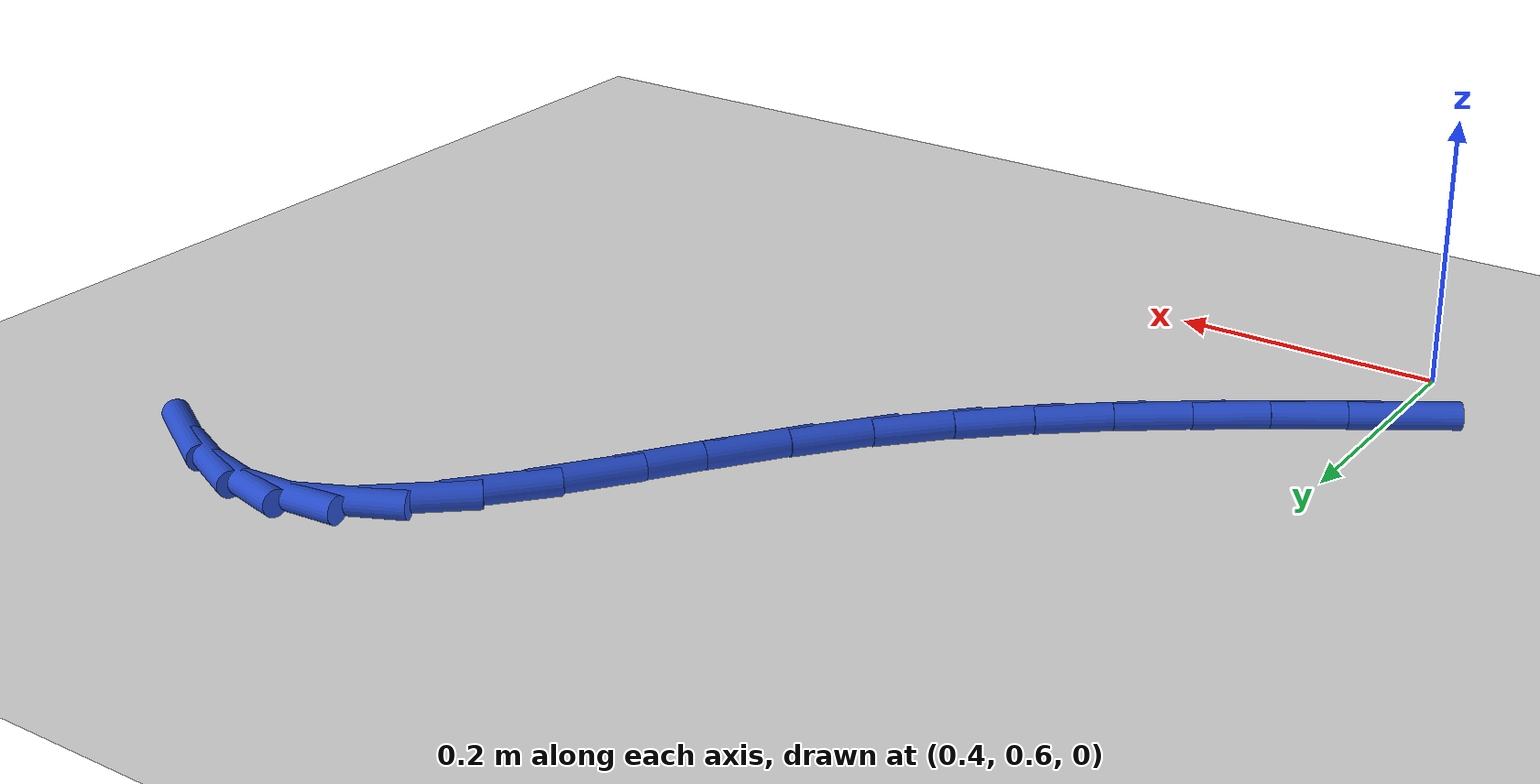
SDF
<sdf version="1.6">
 <world name="default">
  <model name="ground_plane">
   <static>1</static>
   <link name="link">
    <collision name="collision">
     <geometry><plane><normal>0 0 1</normal><size>100 100</size></plane></geometry>
     <surface><friction><ode><mu>100</mu><mu2>50</mu2></ode></friction></surface>
    </collision>
    <visual name="visual">
     <cast_shadows>0</cast_shadows>
     <geometry><plane><normal>0 0 1</normal><size>100 100</size></plane></geometry>
     <material>
      <script><uri>file://media/materials/scripts/gazebo.material</uri><name>Gazebo/WhiteGlow</name></script>
     </material>
    </visual>
   </link>
  </model>
  <model name="line">
   <link name="link_16">
    <pose>0.3879366537536095 0.6874724167012136 0.01 0 1.57 0.5848019640146941</pose>
    <collision name="collision">
     <geometry><cylinder><radius>0.01</radius><length>0.08</length></cylinder></geometry>
    </collision>
    <visual name="visual">
     <material>
      <script><name>Gazebo/Blue</name><uri>file://media/materials/scripts/gazebo.material</uri></script>
     </material>
     <geometry><cylinder><radius>0.01</radius><length>0.08</length></cylinder></geometry>
    </visual>
   </link>
   <link name="link_17">
    <pose>0.4329678564570491 0.7172854752440283 0.01 0 1.57 0.5970556516180642</pose>
    <collision name="collision">
     <geometry><cylinder><radius>0.01</radius><length>0.08</length></cylinder></geometry>
    </collision>
    <visual name="visual">
     <material>
      <script><name>Gazebo/Blue</name><uri>file://media/materials/scripts/gazebo.material</uri></script>
     </material>
     <geometry><cylinder><radius>0.01</radius><length>0.08</length></cylinder></geometry>
    </visual>
   </link>
   <link name="link_18">
    <pose>0.47825533997413866 0.7480729506278618 0.01 0 1.57 0.6215809120737144</pose>
    <collision name="collision">
     <geometry><cylinder><radius>0.01</radius><length>0.08</length></cylinder></geometry>
    </collision>
    <visual name="visual">
     <material>
      <script><name>Gazebo/Blue</name><uri>file://media/materials/scripts/gazebo.material</uri></script>
     </material>
     <geometry><cylinder><radius>0.01</radius><length>0.08</length></cylinder></geometry>
    </visual>
   </link>
   <link name="link_19">
    <pose>0.5233580027155281 0.780379913739868 0.01 0 1.57 0.6579326872274103</pose>
    <collision name="collision">
     <geometry><cylinder><radius>0.01</radius><length>0.08</length></cylinder></geometry>
    </collision>
    <visual name="visual">
     <material>
      <script><name>Gazebo/Blue</name><uri>file://media/materials/scripts/gazebo.material</uri></script>
     </material>
     <geometry><cylinder><radius>0.01</radius><length>0.08</length></cylinder></geometry>
    </visual>
   </link>
   <link name="link_20">
    <pose>0.5678347430918664 0.8147514354672004 0.01 0 1.57 0.7056016022560662</pose>
    <collision name="collision">
     <geometry><cylinder><radius>0.01</radius><length>0.08</length></cylinder></geometry>
    </collision>
    <visual name="visual">
     <material>
      <script><name>Gazebo/Blue</name><uri>file://media/materials/scripts/gazebo.material</uri></script>
     </material>
     <geometry><cylinder><radius>0.01</radius><length>0.08</length></cylinder></geometry>
    </visual>
   </link>
   <link name="link_21">
    <pose>0.6112444595138036 0.8517325866970131 0.01 0 1.57 0.7638779085880193</pose>
    <collision name="collision">
     <geometry><cylinder><radius>0.01</radius><length>0.08</length></cylinder></geometry>
    </collision>
    <visual name="visual">
     <material>
      <script><name>Gazebo/Blue</name><uri>file://media/materials/scripts/gazebo.material</uri></script>
     </material>
     <geometry><cylinder><radius>0.01</radius><length>0.08</length></cylinder></geometry>
    </visual>
   </link>
   <link name="link_22">
    <pose>0.6531460503919884 0.8918684383164589 0.01 0 1.57 0.8317112746587209</pose>
    <collision name="collision">
     <geometry><cylinder><radius>0.01</radius><length>0.08</length></cylinder></geometry>
    </collision>
    <visual name="visual">
     <material>
      <script><name>Gazebo/Blue</name><uri>file://media/materials/scripts/gazebo.material</uri></script>
     </material>
     <geometry><cylinder><radius>0.01</radius><length>0.08</length></cylinder></geometry>
    </visual>
   </link>
   <link name="link_23">
    <pose>0.6930984141370711 0.9357040612126928 0.01 0 1.57 0.9054417929205705</pose>
    <collision name="collision">
     <geometry><cylinder><radius>0.01</radius><length>0.08</length></cylinder></geometry>
    </collision>
    <visual name="visual">
     <material>
      <script><name>Gazebo/Blue</name><uri>file://media/materials/scripts/gazebo.material</uri></script>
     </material>
     <geometry><cylinder><radius>0.01</radius><length>0.08</length></cylinder></geometry>
    </visual>
   </link>
   <link name="link_24">
    <pose>0.7307111971477394 0.9836354958245229 0.01 0 1.57 0.956693167705404</pose>
    <collision name="collision">
     <geometry><cylinder><radius>0.01</radius><length>0.08</length></cylinder></geometry>
    </collision>
    <visual name="visual">
     <material>
      <script><name>Gazebo/Blue</name><uri>file://media/materials/scripts/gazebo.material</uri></script>
     </material>
     <geometry><cylinder><radius>0.01</radius><length>0.08</length></cylinder></geometry>
    </visual>
   </link>
   <link name="link_25">
    <pose>0.7662707702710859 1.0340714614801394 0.01 0 1.57 0.9692664904671359</pose>
    <collision name="collision">
     <geometry><cylinder><radius>0.01</radius><length>0.08</length></cylinder></geometry>
    </collision>
    <visual name="visual">
     <material>
      <script><name>Gazebo/Blue</name><uri>file://media/materials/scripts/gazebo.material</uri></script>
     </material>
     <geometry><cylinder><radius>0.01</radius><length>0.08</length></cylinder></geometry>
    </visual>
   </link>
   <link name="link_26">
    <pose>0.8005451846684318 1.0840061380163684 0.01 0 1.57 0.9416594743193045</pose>
    <collision name="collision">
     <geometry><cylinder><radius>0.01</radius><length>0.08</length></cylinder></geometry>
    </collision>
    <visual name="visual">
     <material>
      <script><name>Gazebo/Blue</name><uri>file://media/materials/scripts/gazebo.material</uri></script>
     </material>
     <geometry><cylinder><radius>0.01</radius><length>0.08</length></cylinder></geometry>
    </visual>
   </link>
   <link name="link_27">
    <pose>0.8343128116850024 1.1304033982235218 0.01 0 1.57 0.8635527067257923</pose>
    <collision name="collision">
     <geometry><cylinder><radius>0.01</radius><length>0.08</length></cylinder></geometry>
    </collision>
    <visual name="visual">
     <material>
      <script><name>Gazebo/Blue</name><uri>file://media/materials/scripts/gazebo.material</uri></script>
     </material>
     <geometry><cylinder><radius>0.01</radius><length>0.08</length></cylinder></geometry>
    </visual>
   </link>
   <link name="link_28">
    <pose>0.8683520226660215 1.1702271148919097 0.01 0 1.57 0.7108827795449572</pose>
    <collision name="collision">
     <geometry><cylinder><radius>0.01</radius><length>0.08</length></cylinder></geometry>
    </collision>
    <visual name="visual">
     <material>
      <script><name>Gazebo/Blue</name><uri>file://media/materials/scripts/gazebo.material</uri></script>
     </material>
     <geometry><cylinder><radius>0.01</radius><length>0.08</length></cylinder></geometry>
    </visual>
   </link>
   <link name="link_29">
    <pose>0.9034411889567143 1.200441160811844 0.01 0 1.57 0.44416503624874554</pose>
    <collision name="collision">
     <geometry><cylinder><radius>0.01</radius><length>0.08</length></cylinder></geometry>
    </collision>
    <visual name="visual">
     <material>
      <script><name>Gazebo/Blue</name><uri>file://media/materials/scripts/gazebo.material</uri></script>
     </material>
     <geometry><cylinder><radius>0.01</radius><length>0.08</length></cylinder></geometry>
    </visual>
   </link>
   <link name="link_30">
    <pose>0.9403586817886175 1.2180094094747382 0.01 0 1.57 0.07290509189926322</pose>
    <collision name="collision">
     <geometry><cylinder><radius>0.01</radius><length>0.08</length></cylinder></geometry>
    </collision>
    <visual name="visual">
     <material>
      <script><name>Gazebo/Blue</name><uri>file://media/materials/scripts/gazebo.material</uri></script>
     </material>
     <geometry><cylinder><radius>0.01</radius><length>0.08</length></cylinder></geometry>
    </visual>
   </link>
   <link name="link_31">
    <pose>0.9797225660596379 1.2208843324320524 0.01 0 1.57 -0.23517942414482865</pose>
    <collision name="collision">
     <geometry><cylinder><radius>0.01</radius><length>0.08</length></cylinder></geometry>
    </collision>
    <visual name="visual">
     <material>
      <script><name>Gazebo/Blue</name><uri>file://media/materials/scripts/gazebo.material</uri></script>
     </material>
     <geometry><cylinder><radius>0.01</radius><length>0.08</length></cylinder></geometry>
    </visual>
   </link>
   <link name="link_32">
    <pose>1.0215267573041287 1.2108674871447895 0.01 0 1.57 -0.4290888746792979</pose>
    <collision name="collision">
     <geometry><cylinder><radius>0.01</radius><length>0.08</length></cylinder></geometry>
    </collision>
    <visual name="visual">
     <material>
      <script><name>Gazebo/Blue</name><uri>file://media/materials/scripts/gazebo.material</uri></script>
     </material>
     <geometry><cylinder><radius>0.01</radius><length>0.08</length></cylinder></geometry>
    </visual>
   </link>
   <link name="link_33">
    <pose>1.06561328962018 1.1906970733752646 0.01 0 1.57 -0.5381767272477964</pose>
    <collision name="collision">
     <geometry><cylinder><radius>0.01</radius><length>0.08</length></cylinder></geometry>
    </collision>
    <visual name="visual">
     <material>
      <script><name>Gazebo/Blue</name><uri>file://media/materials/scripts/gazebo.material</uri></script>
     </material>
     <geometry><cylinder><radius>0.01</radius><length>0.08</length></cylinder></geometry>
    </visual>
   </link>
  </model>
 </world>
</sdf>
